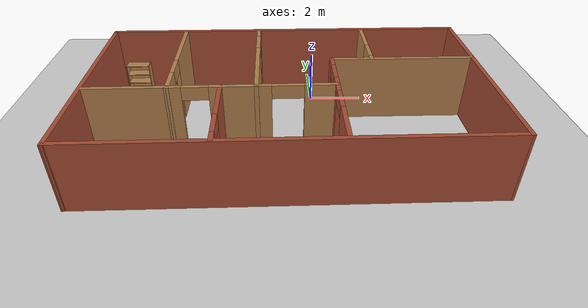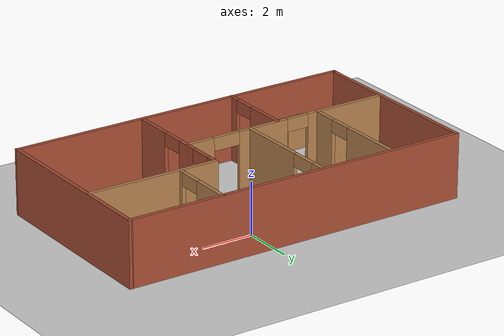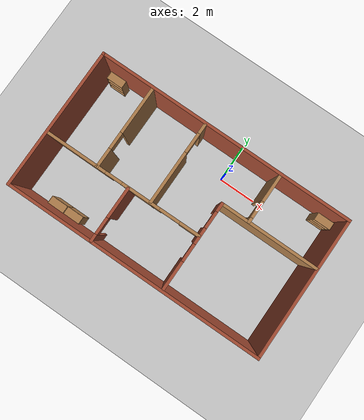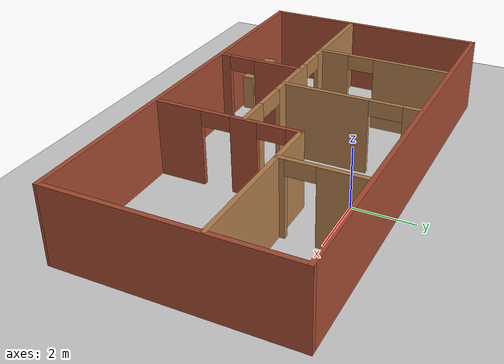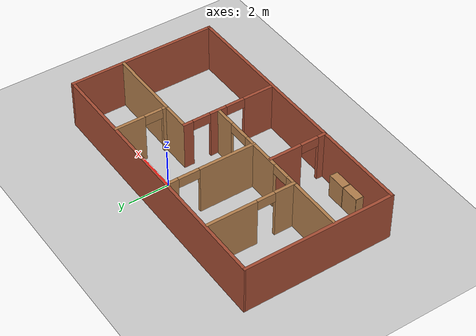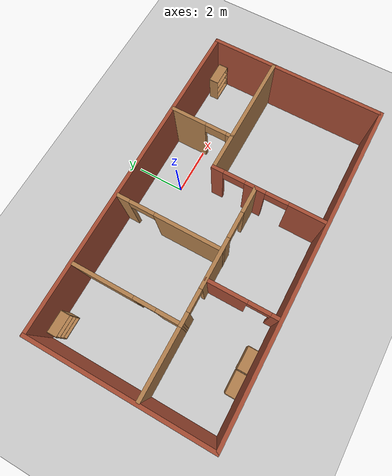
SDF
<sdf version="1.7">
 <world name="default">
  <light name="sun" type="directional">
   <pose>0 0 10 0 -0 0</pose>
   <diffuse>0.8 0.8 0.8 1</diffuse>
   <specular>0.2 0.2 0.2 1</specular>
   <attenuation>
    <range>1000</range>
    <constant>0.9</constant>
    <linear>0.01</linear>
    <quadratic>0.001</quadratic>
   </attenuation>
   <direction>-0.5 0.1 -0.9</direction>
   <spot><inner_angle>0</inner_angle><outer_angle>0</outer_angle><falloff>0</falloff></spot>
  </light>
  <model name="ground_plane">
   <static>1</static>
   <link name="link">
    <collision name="collision">
     <geometry><plane><normal>0 0 1</normal><size>100 100</size></plane></geometry>
     <surface><friction><ode><mu>100</mu><mu2>50</mu2></ode></friction></surface>
    </collision>
    <visual name="visual">
     <cast_shadows>0</cast_shadows>
     <geometry><plane><normal>0 0 1</normal><size>100 100</size></plane></geometry>
     <material>
      <script><uri>file://media/materials/scripts/gazebo.material</uri><name>Gazebo/Grey</name></script>
     </material>
    </visual>
   </link>
  </model>
  <gravity>0 0 -9.8</gravity>
  <magnetic_field>6e-06 2.3e-05 -4.2e-05</magnetic_field>
  <atmosphere type="adiabatic"/>
  <physics type="ode">
   <max_step_size>0.001</max_step_size>
   <real_time_factor>1</real_time_factor>
   <real_time_update_rate>1000</real_time_update_rate>
  </physics>
  <scene><ambient>0.4 0.4 0.4 1</ambient><background>0.7 0.7 0.7 1</background><shadows>1</shadows></scene>
  <spherical_coordinates>
   <surface_model>EARTH_WGS84</surface_model>
   <latitude_deg>0</latitude_deg>
   <longitude_deg>0</longitude_deg>
   <elevation>0</elevation>
   <heading_deg>0</heading_deg>
  </spherical_coordinates>
  <model name="Home">
   <pose>-1.03837 -2.37134 0 0 -0 0</pose>
   <link name="Wall_12">
    <pose>1.66056 -1.22804 0 0 -0 1.5708</pose>
    <visual name="Wall_12_Visual_0">
     <pose>-1.61056 0 1.25 0 -0 0</pose>
     <geometry><box><size>1.52888 0.15 2.5</size></box></geometry>
     <material>
      <script><uri>file://media/materials/scripts/gazebo.material</uri><name>Gazebo/Bricks</name></script>
      <ambient>1 1 1 1</ambient>
     </material>
     <meta><layer>0</layer></meta>
    </visual>
    <collision name="Wall_12_Collision_0">
     <geometry><box><size>1.52888 0.15 2.5</size></box></geometry>
     <pose>-1.61056 0 1.25 0 -0 0</pose>
    </collision>
    <visual name="Wall_12_Visual_1">
     <pose>0.530674 0 1.25 0 -0 0</pose>
     <geometry><box><size>0.861072 0.15 2.5</size></box></geometry>
     <material>
      <script><uri>file://media/materials/scripts/gazebo.material</uri><name>Gazebo/Bricks</name></script>
      <ambient>1 1 1 1</ambient>
     </material>
     <meta><layer>0</layer></meta>
    </visual>
    <collision name="Wall_12_Collision_1">
     <geometry><box><size>0.861072 0.15 2.5</size></box></geometry>
     <pose>0.530674 0 1.25 0 -0 0</pose>
    </collision>
    <visual name="Wall_12_Visual_2">
     <pose>2.1181 0 1.25 0 -0 0</pose>
     <geometry><box><size>0.51379 0.15 2.5</size></box></geometry>
     <material>
      <script><uri>file://media/materials/scripts/gazebo.material</uri><name>Gazebo/Bricks</name></script>
      <ambient>1 1 1 1</ambient>
     </material>
     <meta><layer>0</layer></meta>
    </visual>
    <collision name="Wall_12_Collision_2">
     <geometry><box><size>0.51379 0.15 2.5</size></box></geometry>
     <pose>2.1181 0 1.25 0 -0 0</pose>
    </collision>
    <visual name="Wall_12_Visual_3">
     <pose>-0.372993 0 2.25 0 -0 0</pose>
     <geometry><box><size>0.946261 0.15 0.5</size></box></geometry>
     <material>
      <script><uri>file://media/materials/scripts/gazebo.material</uri><name>Gazebo/Bricks</name></script>
      <ambient>1 1 1 1</ambient>
     </material>
     <meta><layer>0</layer></meta>
    </visual>
    <collision name="Wall_12_Collision_3">
     <geometry><box><size>0.946261 0.15 0.5</size></box></geometry>
     <pose>-0.372993 0 2.25 0 -0 0</pose>
    </collision>
    <visual name="Wall_12_Visual_4">
     <pose>1.41121 0 2.25 0 -0 0</pose>
     <geometry><box><size>0.9 0.15 0.5</size></box></geometry>
     <material>
      <script><uri>file://media/materials/scripts/gazebo.material</uri><name>Gazebo/Bricks</name></script>
      <ambient>1 1 1 1</ambient>
     </material>
     <meta><layer>0</layer></meta>
    </visual>
    <collision name="Wall_12_Collision_4">
     <geometry><box><size>0.9 0.15 0.5</size></box></geometry>
     <pose>1.41121 0 2.25 0 -0 0</pose>
    </collision>
   </link>
   <link name="Wall_13">
    <collision name="Wall_13_Collision">
     <geometry><box><size>5.25 0.15 2.5</size></box></geometry>
     <pose>0 0 1.25 0 -0 0</pose>
    </collision>
    <visual name="Wall_13_Visual">
     <pose>0 0 1.25 0 -0 0</pose>
     <geometry><box><size>5.25 0.15 2.5</size></box></geometry>
     <material>
      <script><uri>file://media/materials/scripts/gazebo.material</uri><name>Gazebo/Wood</name></script>
      <ambient>1 1 1 1</ambient>
     </material>
     <meta><layer>0</layer></meta>
    </visual>
    <pose>4.21056 1.07196 0 0 -0 0</pose>
   </link>
   <link name="Wall_15">
    <pose>3.11696 2.38389 0 0 -0 1.5708</pose>
    <visual name="Wall_15_Visual_0">
     <pose>-1.22409 0 1.25 0 -0 0</pose>
     <geometry><box><size>0.301812 0.15 2.5</size></box></geometry>
     <material>
      <script><uri>file://media/materials/scripts/gazebo.material</uri><name>Gazebo/Wood</name></script>
      <ambient>1 1 1 1</ambient>
     </material>
     <meta><layer>0</layer></meta>
    </visual>
    <collision name="Wall_15_Collision_0">
     <geometry><box><size>0.301812 0.15 2.5</size></box></geometry>
     <pose>-1.22409 0 1.25 0 -0 0</pose>
    </collision>
    <visual name="Wall_15_Visual_1">
     <pose>0.600906 0 1.25 0 -0 0</pose>
     <geometry><box><size>1.54819 0.15 2.5</size></box></geometry>
     <material>
      <script><uri>file://media/materials/scripts/gazebo.material</uri><name>Gazebo/Wood</name></script>
      <ambient>1 1 1 1</ambient>
     </material>
     <meta><layer>0</layer></meta>
    </visual>
    <collision name="Wall_15_Collision_1">
     <geometry><box><size>1.54819 0.15 2.5</size></box></geometry>
     <pose>0.600906 0 1.25 0 -0 0</pose>
    </collision>
    <visual name="Wall_15_Visual_2">
     <pose>-0.623188 0 2.25 0 -0 0</pose>
     <geometry><box><size>0.9 0.15 0.5</size></box></geometry>
     <material>
      <script><uri>file://media/materials/scripts/gazebo.material</uri><name>Gazebo/Wood</name></script>
      <ambient>1 1 1 1</ambient>
     </material>
     <meta><layer>0</layer></meta>
    </visual>
    <collision name="Wall_15_Collision_2">
     <geometry><box><size>0.9 0.15 0.5</size></box></geometry>
     <pose>-0.623188 0 2.25 0 -0 0</pose>
    </collision>
   </link>
   <link name="Wall_18">
    <pose>-3.96332 1.41133 0 0 -0 -1.5708</pose>
    <visual name="Wall_18_Visual_0">
     <pose>-0.988781 0 1.25 0 -0 0</pose>
     <geometry><box><size>2.52244 0.15 2.5</size></box></geometry>
     <material>
      <script><uri>file://media/materials/scripts/gazebo.material</uri><name>Gazebo/Wood</name></script>
      <ambient>1 1 1 1</ambient>
     </material>
     <meta><layer>0</layer></meta>
    </visual>
    <collision name="Wall_18_Collision_0">
     <geometry><box><size>2.52244 0.15 2.5</size></box></geometry>
     <pose>-0.988781 0 1.25 0 -0 0</pose>
    </collision>
    <visual name="Wall_18_Visual_1">
     <pose>1.71122 0 1.25 0 -0 0</pose>
     <geometry><box><size>1.07756 0.15 2.5</size></box></geometry>
     <material>
      <script><uri>file://media/materials/scripts/gazebo.material</uri><name>Gazebo/Wood</name></script>
      <ambient>1 1 1 1</ambient>
     </material>
     <meta><layer>0</layer></meta>
    </visual>
    <collision name="Wall_18_Collision_1">
     <geometry><box><size>1.07756 0.15 2.5</size></box></geometry>
     <pose>1.71122 0 1.25 0 -0 0</pose>
    </collision>
    <visual name="Wall_18_Visual_2">
     <pose>0.722438 0 2.25 0 -0 0</pose>
     <geometry><box><size>0.9 0.15 0.5</size></box></geometry>
     <material>
      <script><uri>file://media/materials/scripts/gazebo.material</uri><name>Gazebo/Wood</name></script>
      <ambient>1 1 1 1</ambient>
     </material>
     <meta><layer>0</layer></meta>
    </visual>
    <collision name="Wall_18_Collision_2">
     <geometry><box><size>0.9 0.15 0.5</size></box></geometry>
     <pose>0.722438 0 2.25 0 -0 0</pose>
    </collision>
   </link>
   <link name="Wall_19">
    <pose>-1.18914 -0.740536 0 0 -0 0.008269</pose>
    <visual name="Wall_19_Visual_0">
     <pose>-2.59209 0 1.25 0 -0 0</pose>
     <geometry><box><size>0.560625 0.15 2.5</size></box></geometry>
     <material>
      <script><uri>file://media/materials/scripts/gazebo.material</uri><name>Gazebo/Wood</name></script>
      <ambient>1 1 1 1</ambient>
     </material>
     <meta><layer>0</layer></meta>
    </visual>
    <collision name="Wall_19_Collision_0">
     <geometry><box><size>0.560625 0.15 2.5</size></box></geometry>
     <pose>-2.59209 0 1.25 0 -0 0</pose>
    </collision>
    <visual name="Wall_19_Visual_1">
     <pose>-0.371666 0 1.25 0 -0 0</pose>
     <geometry><box><size>2.08022 0.15 2.5</size></box></geometry>
     <material>
      <script><uri>file://media/materials/scripts/gazebo.material</uri><name>Gazebo/Wood</name></script>
      <ambient>1 1 1 1</ambient>
     </material>
     <meta><layer>0</layer></meta>
    </visual>
    <collision name="Wall_19_Collision_1">
     <geometry><box><size>2.08022 0.15 2.5</size></box></geometry>
     <pose>-0.371666 0 1.25 0 -0 0</pose>
    </collision>
    <visual name="Wall_19_Visual_2">
     <pose>2.31313 0 1.25 0 -0 0</pose>
     <geometry><box><size>1.11854 0.15 2.5</size></box></geometry>
     <material>
      <script><uri>file://media/materials/scripts/gazebo.material</uri><name>Gazebo/Wood</name></script>
      <ambient>1 1 1 1</ambient>
     </material>
     <meta><layer>0</layer></meta>
    </visual>
    <collision name="Wall_19_Collision_2">
     <geometry><box><size>1.11854 0.15 2.5</size></box></geometry>
     <pose>2.31313 0 1.25 0 -0 0</pose>
    </collision>
    <visual name="Wall_19_Visual_3">
     <pose>-1.86178 0 2.25 0 -0 0</pose>
     <geometry><box><size>0.9 0.15 0.5</size></box></geometry>
     <material>
      <script><uri>file://media/materials/scripts/gazebo.material</uri><name>Gazebo/Wood</name></script>
      <ambient>1 1 1 1</ambient>
     </material>
     <meta><layer>0</layer></meta>
    </visual>
    <collision name="Wall_19_Collision_3">
     <geometry><box><size>0.9 0.15 0.5</size></box></geometry>
     <pose>-1.86178 0 2.25 0 -0 0</pose>
    </collision>
    <visual name="Wall_19_Visual_4">
     <pose>1.21116 0 2.25 0 -0 0</pose>
     <geometry><box><size>1.08542 0.15 0.5</size></box></geometry>
     <material>
      <script><uri>file://media/materials/scripts/gazebo.material</uri><name>Gazebo/Wood</name></script>
      <ambient>1 1 1 1</ambient>
     </material>
     <meta><layer>0</layer></meta>
    </visual>
    <collision name="Wall_19_Collision_4">
     <geometry><box><size>1.08542 0.15 0.5</size></box></geometry>
     <pose>1.21116 0 2.25 0 -0 0</pose>
    </collision>
   </link>
   <link name="Wall_30">
    <collision name="Wall_30_Collision">
     <geometry><box><size>2.84783 0.15 2.5</size></box></geometry>
     <pose>0 0 1.25 0 -0 0</pose>
    </collision>
    <visual name="Wall_30_Visual">
     <pose>0 0 1.25 0 -0 0</pose>
     <geometry><box><size>2.84783 0.15 2.5</size></box></geometry>
     <material>
      <script><uri>file://media/materials/scripts/gazebo.material</uri><name>Gazebo/Wood</name></script>
      <ambient>1 1 1 1</ambient>
     </material>
     <meta><layer>0</layer></meta>
    </visual>
    <pose>-5.33536 -0.766722 0 0 -0 0.002265</pose>
   </link>
   <link name="Wall_35">
    <pose>-2.22395 -2.216 0 0 -0 -1.5708</pose>
    <visual name="Wall_35_Visual_0">
     <pose>-0.661897 0 1.25 0 -0 0</pose>
     <geometry><box><size>1.67621 0.15 2.5</size></box></geometry>
     <material>
      <script><uri>file://media/materials/scripts/gazebo.material</uri><name>Gazebo/Bricks</name></script>
      <ambient>1 1 1 1</ambient>
     </material>
     <meta><layer>0</layer></meta>
    </visual>
    <collision name="Wall_35_Collision_0">
     <geometry><box><size>1.67621 0.15 2.5</size></box></geometry>
     <pose>-0.661897 0 1.25 0 -0 0</pose>
    </collision>
    <visual name="Wall_35_Visual_1">
     <pose>1.2881 0 1.25 0 -0 0</pose>
     <geometry><box><size>0.423793 0.15 2.5</size></box></geometry>
     <material>
      <script><uri>file://media/materials/scripts/gazebo.material</uri><name>Gazebo/Bricks</name></script>
      <ambient>1 1 1 1</ambient>
     </material>
     <meta><layer>0</layer></meta>
    </visual>
    <collision name="Wall_35_Collision_1">
     <geometry><box><size>0.423793 0.15 2.5</size></box></geometry>
     <pose>1.2881 0 1.25 0 -0 0</pose>
    </collision>
    <visual name="Wall_35_Visual_2">
     <pose>0.626207 0 2.25 0 -0 0</pose>
     <geometry><box><size>0.9 0.15 0.5</size></box></geometry>
     <material>
      <script><uri>file://media/materials/scripts/gazebo.material</uri><name>Gazebo/Bricks</name></script>
      <ambient>1 1 1 1</ambient>
     </material>
     <meta><layer>0</layer></meta>
    </visual>
    <collision name="Wall_35_Collision_2">
     <geometry><box><size>0.9 0.15 0.5</size></box></geometry>
     <pose>0.626207 0 2.25 0 -0 0</pose>
    </collision>
   </link>
   <link name="Wall_37">
    <pose>-1.02777 1.42469 0 0 -0 1.5708</pose>
    <visual name="Wall_37_Visual_0">
     <pose>-0.80612 0 1.25 0 -0 0</pose>
     <geometry><box><size>2.88776 0.15 2.5</size></box></geometry>
     <material>
      <script><uri>file://media/materials/scripts/gazebo.material</uri><name>Gazebo/Wood</name></script>
      <ambient>1 1 1 1</ambient>
     </material>
     <meta><layer>0</layer></meta>
    </visual>
    <collision name="Wall_37_Collision_0">
     <geometry><box><size>2.88776 0.15 2.5</size></box></geometry>
     <pose>-0.80612 0 1.25 0 -0 0</pose>
    </collision>
    <visual name="Wall_37_Visual_1">
     <pose>1.97484 0 1.25 0 -0 0</pose>
     <geometry><box><size>0.550325 0.15 2.5</size></box></geometry>
     <material>
      <script><uri>file://media/materials/scripts/gazebo.material</uri><name>Gazebo/Wood</name></script>
      <ambient>1 1 1 1</ambient>
     </material>
     <meta><layer>0</layer></meta>
    </visual>
    <collision name="Wall_37_Collision_1">
     <geometry><box><size>0.550325 0.15 2.5</size></box></geometry>
     <pose>1.97484 0 1.25 0 -0 0</pose>
    </collision>
    <visual name="Wall_37_Visual_2">
     <pose>1.16872 0 2.25 0 -0 0</pose>
     <geometry><box><size>1.06191 0.15 0.5</size></box></geometry>
     <material>
      <script><uri>file://media/materials/scripts/gazebo.material</uri><name>Gazebo/Wood</name></script>
      <ambient>1 1 1 1</ambient>
     </material>
     <meta><layer>0</layer></meta>
    </visual>
    <collision name="Wall_37_Collision_2">
     <geometry><box><size>1.06191 0.15 0.5</size></box></geometry>
     <pose>1.16872 0 2.25 0 -0 0</pose>
    </collision>
   </link>
   <link name="Wall_4">
    <collision name="Wall_4_Collision">
     <geometry><box><size>7.54823 0.15 2.5</size></box></geometry>
     <pose>0 0 1.25 0 -0 0</pose>
    </collision>
    <visual name="Wall_4_Visual">
     <pose>0 0 1.25 0 -0 0</pose>
     <geometry><box><size>7.54823 0.15 2.5</size></box></geometry>
     <material>
      <script><uri>file://media/materials/scripts/gazebo.material</uri><name>Gazebo/Bricks</name></script>
      <ambient>1 1 1 1</ambient>
     </material>
     <meta><layer>0</layer></meta>
    </visual>
    <pose>-6.80015 -0.007429 0 0 -0 1.5701</pose>
   </link>
   <link name="Wall_5">
    <collision name="Wall_5_Collision">
     <geometry><box><size>13.75 0.15 2.5</size></box></geometry>
     <pose>0 0 1.25 0 -0 0</pose>
    </collision>
    <visual name="Wall_5_Visual">
     <pose>0 0 1.25 0 -0 0</pose>
     <geometry><box><size>13.75 0.15 2.5</size></box></geometry>
     <material>
      <script><uri>file://media/materials/scripts/gazebo.material</uri><name>Gazebo/Bricks</name></script>
      <ambient>1 1 1 1</ambient>
     </material>
     <meta><layer>0</layer></meta>
    </visual>
    <pose>0.002433 3.70689 0 0 -0 0</pose>
   </link>
   <link name="Wall_6">
    <collision name="Wall_6_Collision">
     <geometry><box><size>7.5 0.15 2.5</size></box></geometry>
     <pose>0 0 1.25 0 -0 0</pose>
    </collision>
    <visual name="Wall_6_Visual">
     <pose>0 0 1.25 0 -0 0</pose>
     <geometry><box><size>7.5 0.15 2.5</size></box></geometry>
     <material>
      <script><uri>file://media/materials/scripts/gazebo.material</uri><name>Gazebo/Bricks</name></script>
      <ambient>1 1 1 1</ambient>
     </material>
     <meta><layer>0</layer></meta>
    </visual>
    <pose>6.80243 0.031891 0 0 -0 -1.5708</pose>
   </link>
   <link name="Wall_7">
    <collision name="Wall_7_Collision">
     <geometry><box><size>13.7088 0.15 2.5</size></box></geometry>
     <pose>0 0 1.25 0 -0 0</pose>
    </collision>
    <visual name="Wall_7_Visual">
     <pose>0 0 1.25 0 -0 0</pose>
     <geometry><box><size>13.7088 0.15 2.5</size></box></geometry>
     <material>
      <script><uri>file://media/materials/scripts/gazebo.material</uri><name>Gazebo/Bricks</name></script>
      <ambient>1 1 1 1</ambient>
     </material>
     <meta><layer>0</layer></meta>
    </visual>
    <pose>0.023113 -3.67482 0 0 -0 -3.13691</pose>
   </link>
   <static>1</static>
  </model>
  <model name="bookshelf">
   <static>1</static>
   <link name="link">
    <inertial><mass>1</mass></inertial>
    <collision name="back">
     <pose>0 0.005 0.6 0 -0 0</pose>
     <geometry><box><size>0.9 0.01 1.2</size></box></geometry>
    </collision>
    <visual name="visual1">
     <pose>0 0.005 0.6 0 -0 0</pose>
     <geometry><box><size>0.9 0.01 1.2</size></box></geometry>
     <material>
      <script><uri>file://media/materials/scripts/gazebo.material</uri><name>Gazebo/Wood</name></script>
     </material>
    </visual>
    <collision name="left_side">
     <pose>0.45 -0.195 0.6 0 -0 0</pose>
     <geometry><box><size>0.02 0.4 1.2</size></box></geometry>
    </collision>
    <visual name="visual2">
     <pose>0.45 -0.195 0.6 0 -0 0</pose>
     <geometry><box><size>0.02 0.4 1.2</size></box></geometry>
     <material>
      <script><uri>file://media/materials/scripts/gazebo.material</uri><name>Gazebo/Wood</name></script>
     </material>
    </visual>
    <collision name="right_side">
     <pose>-0.45 -0.195 0.6 0 -0 0</pose>
     <geometry><box><size>0.02 0.4 1.2</size></box></geometry>
    </collision>
    <visual name="visual3">
     <pose>-0.45 -0.195 0.6 0 -0 0</pose>
     <geometry><box><size>0.02 0.4 1.2</size></box></geometry>
     <material>
      <script><uri>file://media/materials/scripts/gazebo.material</uri><name>Gazebo/Wood</name></script>
     </material>
    </visual>
    <collision name="bottom">
     <pose>0 -0.195 0.03 0 -0 0</pose>
     <geometry><box><size>0.88 0.4 0.06</size></box></geometry>
    </collision>
    <visual name="visual4">
     <pose>0 -0.195 0.03 0 -0 0</pose>
     <geometry><box><size>0.88 0.4 0.06</size></box></geometry>
     <material>
      <script><uri>file://media/materials/scripts/gazebo.material</uri><name>Gazebo/Wood</name></script>
     </material>
    </visual>
    <collision name="top">
     <pose>0 -0.195 1.19 0 -0 0</pose>
     <geometry><box><size>0.88 0.4 0.02</size></box></geometry>
    </collision>
    <visual name="visual5">
     <pose>0 -0.195 1.19 0 -0 0</pose>
     <geometry><box><size>0.88 0.4 0.02</size></box></geometry>
     <material>
      <script><uri>file://media/materials/scripts/gazebo.material</uri><name>Gazebo/Wood</name></script>
     </material>
    </visual>
    <collision name="low_shelf">
     <pose>0 -0.195 0.43 0 -0 0</pose>
     <geometry><box><size>0.88 0.4 0.02</size></box></geometry>
    </collision>
    <visual name="visual6">
     <pose>0 -0.195 0.43 0 -0 0</pose>
     <geometry><box><size>0.88 0.4 0.02</size></box></geometry>
     <material>
      <script><uri>file://media/materials/scripts/gazebo.material</uri><name>Gazebo/Wood</name></script>
     </material>
    </visual>
    <collision name="high_shelf">
     <pose>0 -0.195 0.8 0 -0 0</pose>
     <geometry><box><size>0.88 0.4 0.02</size></box></geometry>
    </collision>
    <visual name="visual7">
     <pose>0 -0.195 0.8 0 -0 0</pose>
     <geometry><box><size>0.88 0.4 0.02</size></box></geometry>
     <material>
      <script><uri>file://media/materials/scripts/gazebo.material</uri><name>Gazebo/Wood</name></script>
     </material>
    </visual>
   </link>
   <pose>5.21081 1.16254 0 0 -0 0</pose>
  </model>
  <model name="bookshelf_0">
   <static>1</static>
   <link name="link">
    <inertial><mass>1</mass></inertial>
    <collision name="back">
     <pose>0 0.005 0.6 0 -0 0</pose>
     <geometry><box><size>0.9 0.01 1.2</size></box></geometry>
    </collision>
    <visual name="visual1">
     <pose>0 0.005 0.6 0 -0 0</pose>
     <geometry><box><size>0.9 0.01 1.2</size></box></geometry>
     <material>
      <script><uri>file://media/materials/scripts/gazebo.material</uri><name>Gazebo/Wood</name></script>
     </material>
    </visual>
    <collision name="left_side">
     <pose>0.45 -0.195 0.6 0 -0 0</pose>
     <geometry><box><size>0.02 0.4 1.2</size></box></geometry>
    </collision>
    <visual name="visual2">
     <pose>0.45 -0.195 0.6 0 -0 0</pose>
     <geometry><box><size>0.02 0.4 1.2</size></box></geometry>
     <material>
      <script><uri>file://media/materials/scripts/gazebo.material</uri><name>Gazebo/Wood</name></script>
     </material>
    </visual>
    <collision name="right_side">
     <pose>-0.45 -0.195 0.6 0 -0 0</pose>
     <geometry><box><size>0.02 0.4 1.2</size></box></geometry>
    </collision>
    <visual name="visual3">
     <pose>-0.45 -0.195 0.6 0 -0 0</pose>
     <geometry><box><size>0.02 0.4 1.2</size></box></geometry>
     <material>
      <script><uri>file://media/materials/scripts/gazebo.material</uri><name>Gazebo/Wood</name></script>
     </material>
    </visual>
    <collision name="bottom">
     <pose>0 -0.195 0.03 0 -0 0</pose>
     <geometry><box><size>0.88 0.4 0.06</size></box></geometry>
    </collision>
    <visual name="visual4">
     <pose>0 -0.195 0.03 0 -0 0</pose>
     <geometry><box><size>0.88 0.4 0.06</size></box></geometry>
     <material>
      <script><uri>file://media/materials/scripts/gazebo.material</uri><name>Gazebo/Wood</name></script>
     </material>
    </visual>
    <collision name="top">
     <pose>0 -0.195 1.19 0 -0 0</pose>
     <geometry><box><size>0.88 0.4 0.02</size></box></geometry>
    </collision>
    <visual name="visual5">
     <pose>0 -0.195 1.19 0 -0 0</pose>
     <geometry><box><size>0.88 0.4 0.02</size></box></geometry>
     <material>
      <script><uri>file://media/materials/scripts/gazebo.material</uri><name>Gazebo/Wood</name></script>
     </material>
    </visual>
    <collision name="low_shelf">
     <pose>0 -0.195 0.43 0 -0 0</pose>
     <geometry><box><size>0.88 0.4 0.02</size></box></geometry>
    </collision>
    <visual name="visual6">
     <pose>0 -0.195 0.43 0 -0 0</pose>
     <geometry><box><size>0.88 0.4 0.02</size></box></geometry>
     <material>
      <script><uri>file://media/materials/scripts/gazebo.material</uri><name>Gazebo/Wood</name></script>
     </material>
    </visual>
    <collision name="high_shelf">
     <pose>0 -0.195 0.8 0 -0 0</pose>
     <geometry><box><size>0.88 0.4 0.02</size></box></geometry>
    </collision>
    <visual name="visual7">
     <pose>0 -0.195 0.8 0 -0 0</pose>
     <geometry><box><size>0.88 0.4 0.02</size></box></geometry>
     <material>
      <script><uri>file://media/materials/scripts/gazebo.material</uri><name>Gazebo/Wood</name></script>
     </material>
    </visual>
   </link>
   <pose>-5.832 -5.51555 0 0 -0 0</pose>
  </model>
  <model name="bookshelf_1">
   <static>1</static>
   <link name="link">
    <inertial><mass>1</mass></inertial>
    <collision name="back">
     <pose>0 0.005 0.6 0 -0 0</pose>
     <geometry><box><size>0.9 0.01 1.2</size></box></geometry>
    </collision>
    <visual name="visual1">
     <pose>0 0.005 0.6 0 -0 0</pose>
     <geometry><box><size>0.9 0.01 1.2</size></box></geometry>
     <material>
      <script><uri>file://media/materials/scripts/gazebo.material</uri><name>Gazebo/Wood</name></script>
     </material>
    </visual>
    <collision name="left_side">
     <pose>0.45 -0.195 0.6 0 -0 0</pose>
     <geometry><box><size>0.02 0.4 1.2</size></box></geometry>
    </collision>
    <visual name="visual2">
     <pose>0.45 -0.195 0.6 0 -0 0</pose>
     <geometry><box><size>0.02 0.4 1.2</size></box></geometry>
     <material>
      <script><uri>file://media/materials/scripts/gazebo.material</uri><name>Gazebo/Wood</name></script>
     </material>
    </visual>
    <collision name="right_side">
     <pose>-0.45 -0.195 0.6 0 -0 0</pose>
     <geometry><box><size>0.02 0.4 1.2</size></box></geometry>
    </collision>
    <visual name="visual3">
     <pose>-0.45 -0.195 0.6 0 -0 0</pose>
     <geometry><box><size>0.02 0.4 1.2</size></box></geometry>
     <material>
      <script><uri>file://media/materials/scripts/gazebo.material</uri><name>Gazebo/Wood</name></script>
     </material>
    </visual>
    <collision name="bottom">
     <pose>0 -0.195 0.03 0 -0 0</pose>
     <geometry><box><size>0.88 0.4 0.06</size></box></geometry>
    </collision>
    <visual name="visual4">
     <pose>0 -0.195 0.03 0 -0 0</pose>
     <geometry><box><size>0.88 0.4 0.06</size></box></geometry>
     <material>
      <script><uri>file://media/materials/scripts/gazebo.material</uri><name>Gazebo/Wood</name></script>
     </material>
    </visual>
    <collision name="top">
     <pose>0 -0.195 1.19 0 -0 0</pose>
     <geometry><box><size>0.88 0.4 0.02</size></box></geometry>
    </collision>
    <visual name="visual5">
     <pose>0 -0.195 1.19 0 -0 0</pose>
     <geometry><box><size>0.88 0.4 0.02</size></box></geometry>
     <material>
      <script><uri>file://media/materials/scripts/gazebo.material</uri><name>Gazebo/Wood</name></script>
     </material>
    </visual>
    <collision name="low_shelf">
     <pose>0 -0.195 0.43 0 -0 0</pose>
     <geometry><box><size>0.88 0.4 0.02</size></box></geometry>
    </collision>
    <visual name="visual6">
     <pose>0 -0.195 0.43 0 -0 0</pose>
     <geometry><box><size>0.88 0.4 0.02</size></box></geometry>
     <material>
      <script><uri>file://media/materials/scripts/gazebo.material</uri><name>Gazebo/Wood</name></script>
     </material>
    </visual>
    <collision name="high_shelf">
     <pose>0 -0.195 0.8 0 -0 0</pose>
     <geometry><box><size>0.88 0.4 0.02</size></box></geometry>
    </collision>
    <visual name="visual7">
     <pose>0 -0.195 0.8 0 -0 0</pose>
     <geometry><box><size>0.88 0.4 0.02</size></box></geometry>
     <material>
      <script><uri>file://media/materials/scripts/gazebo.material</uri><name>Gazebo/Wood</name></script>
     </material>
    </visual>
   </link>
   <pose>-4.90541 -5.51116 0 0 -0 0</pose>
  </model>
  <model name="bookshelf_2">
   <static>1</static>
   <link name="link">
    <inertial><mass>1</mass></inertial>
    <collision name="back">
     <pose>0 0.005 0.6 0 -0 0</pose>
     <geometry><box><size>0.9 0.01 1.2</size></box></geometry>
    </collision>
    <visual name="visual1">
     <pose>0 0.005 0.6 0 -0 0</pose>
     <geometry><box><size>0.9 0.01 1.2</size></box></geometry>
     <material>
      <script><uri>file://media/materials/scripts/gazebo.material</uri><name>Gazebo/Wood</name></script>
     </material>
    </visual>
    <collision name="left_side">
     <pose>0.45 -0.195 0.6 0 -0 0</pose>
     <geometry><box><size>0.02 0.4 1.2</size></box></geometry>
    </collision>
    <visual name="visual2">
     <pose>0.45 -0.195 0.6 0 -0 0</pose>
     <geometry><box><size>0.02 0.4 1.2</size></box></geometry>
     <material>
      <script><uri>file://media/materials/scripts/gazebo.material</uri><name>Gazebo/Wood</name></script>
     </material>
    </visual>
    <collision name="right_side">
     <pose>-0.45 -0.195 0.6 0 -0 0</pose>
     <geometry><box><size>0.02 0.4 1.2</size></box></geometry>
    </collision>
    <visual name="visual3">
     <pose>-0.45 -0.195 0.6 0 -0 0</pose>
     <geometry><box><size>0.02 0.4 1.2</size></box></geometry>
     <material>
      <script><uri>file://media/materials/scripts/gazebo.material</uri><name>Gazebo/Wood</name></script>
     </material>
    </visual>
    <collision name="bottom">
     <pose>0 -0.195 0.03 0 -0 0</pose>
     <geometry><box><size>0.88 0.4 0.06</size></box></geometry>
    </collision>
    <visual name="visual4">
     <pose>0 -0.195 0.03 0 -0 0</pose>
     <geometry><box><size>0.88 0.4 0.06</size></box></geometry>
     <material>
      <script><uri>file://media/materials/scripts/gazebo.material</uri><name>Gazebo/Wood</name></script>
     </material>
    </visual>
    <collision name="top">
     <pose>0 -0.195 1.19 0 -0 0</pose>
     <geometry><box><size>0.88 0.4 0.02</size></box></geometry>
    </collision>
    <visual name="visual5">
     <pose>0 -0.195 1.19 0 -0 0</pose>
     <geometry><box><size>0.88 0.4 0.02</size></box></geometry>
     <material>
      <script><uri>file://media/materials/scripts/gazebo.material</uri><name>Gazebo/Wood</name></script>
     </material>
    </visual>
    <collision name="low_shelf">
     <pose>0 -0.195 0.43 0 -0 0</pose>
     <geometry><box><size>0.88 0.4 0.02</size></box></geometry>
    </collision>
    <visual name="visual6">
     <pose>0 -0.195 0.43 0 -0 0</pose>
     <geometry><box><size>0.88 0.4 0.02</size></box></geometry>
     <material>
      <script><uri>file://media/materials/scripts/gazebo.material</uri><name>Gazebo/Wood</name></script>
     </material>
    </visual>
    <collision name="high_shelf">
     <pose>0 -0.195 0.8 0 -0 0</pose>
     <geometry><box><size>0.88 0.4 0.02</size></box></geometry>
    </collision>
    <visual name="visual7">
     <pose>0 -0.195 0.8 0 -0 0</pose>
     <geometry><box><size>0.88 0.4 0.02</size></box></geometry>
     <material>
      <script><uri>file://media/materials/scripts/gazebo.material</uri><name>Gazebo/Wood</name></script>
     </material>
    </visual>
   </link>
   <pose>-7.08662 1.15963 0 0 -0 0</pose>
  </model>
 </world>
</sdf>
